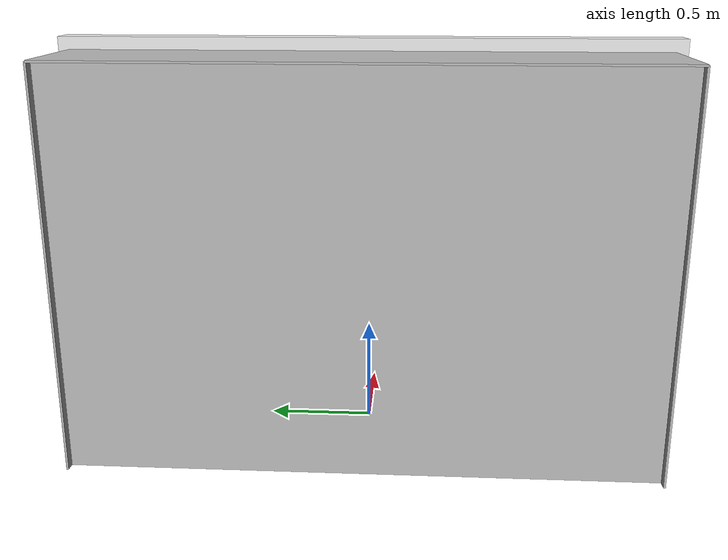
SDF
<?xml version="1.0" ?>
<sdf version="1.4">
  <model name="RoboCup2019_Goal">
    <static>true</static>
    <link name="left_post">
      <pose>-0.06 1.36 0.9 0 0 0</pose>
      <collision name="collision">
        <geometry>
          <box><size>0.12 0.12 1.8</size></box>
        </geometry>
      </collision>
      <visual name="visual">
        <geometry>
          <box><size>0.12 0.12 1.8</size></box>
        </geometry>
        <material>
          <script>
            <uri>file://media/materials/scripts/gazebo.material</uri>
            <name>Gazebo/White</name>
          </script>
        </material>
      </visual>
    </link>
    <link name="right_post">
      <pose>-0.06 -1.36 0.9 0 0 0</pose>
      <collision name="collision">
        <geometry>
          <box><size>0.12 0.12 1.8</size></box>
        </geometry>
      </collision>
      <visual name="visual">
        <geometry>
          <box><size>0.12 0.12 1.8</size></box>
        </geometry>
        <material>
          <script>
            <uri>file://media/materials/scripts/gazebo.material</uri>
            <name>Gazebo/White</name>
          </script>
        </material>
      </visual>
    </link>
    <link name="crossbar">
      <pose>-0.06 0 1.86 0 0 0</pose>
      <collision name="collision">
        <geometry>
          <box><size>0.12 2.84 0.12</size></box>
        </geometry>
      </collision>
      <visual name="visual">
        <geometry>
          <box><size>0.12 2.84 0.12</size></box>
        </geometry>
        <material>
          <script>
            <uri>file://media/materials/scripts/gazebo.material</uri>
            <name>Gazebo/White</name>
          </script>
        </material>
      </visual>
    </link>
    <link name="center_net">
      <pose>-0.6 0 0.93 0 0 0</pose>
      <collision name="collision">
        <geometry>
          <box><size>0.01 2.72 1.86</size></box>
        </geometry>
      </collision>
      <visual name="visual">
        <geometry>
          <box><size>0.01 2.72 1.86</size></box>
        </geometry>
        <material>
          <script>
            <uri>file://materials/scripts/</uri>
            <uri>file://materials/textures/</uri>
            <name>RoboCup/Net</name>
          </script>
        </material>
      </visual>
    </link>
    <link name='upper_net'>
      <pose>-0.4 0 1.86 0 0 0</pose>
      <collision name='collision'>
        <geometry>
          <box><size>0.5 2.72 0.01</size></box>
        </geometry>
        <max_contacts>10</max_contacts>
      </collision>
      <visual name='visual'>
        <geometry>
          <box><size>0.5 2.72 0.01</size></box>
        </geometry>
        <material>
          <script>
            <uri>file://materials/scripts/</uri>
            <uri>file://materials/textures/</uri>
            <name>RoboCup/Net</name>
          </script>
        </material>
      </visual>
    </link>
    <link name="left_net">
      <pose>-0.4 1.36 0.93 0 0 0</pose>
      <collision name="collision">
        <geometry>
          <box>
            <size>0.5 0.01 1.86</size>
          </box>
        </geometry>
      </collision>
      <visual name="visual">
        <geometry>
          <box>
            <size>0.5 0.01 1.86</size>
          </box>
        </geometry>
        <material>
          <script>
            <uri>file://materials/scripts/</uri>
            <uri>file://materials/textures/</uri>
            <name>RoboCup/Net</name>
          </script>
        </material>
      </visual>
    </link>
    <link name="right_net">
      <pose>-0.4 -1.36 0.93 0 0 0</pose>
      <collision name="collision">
        <geometry>
          <box>
            <size>0.5 0.01 1.86</size>
          </box>
        </geometry>
      </collision>
      <visual name="visual">
        <geometry>
          <box>
            <size>0.5 0.01 1.86</size>
          </box>
        </geometry>
        <material>
          <script>
            <uri>file://scripts/robocup2019_field.material</uri>
            <uri>file://textures/net.png</uri>
            <name>RoboCup/Net</name>
          </script>
        </material>
      </visual>
    </link>
  </model>
</sdf>
